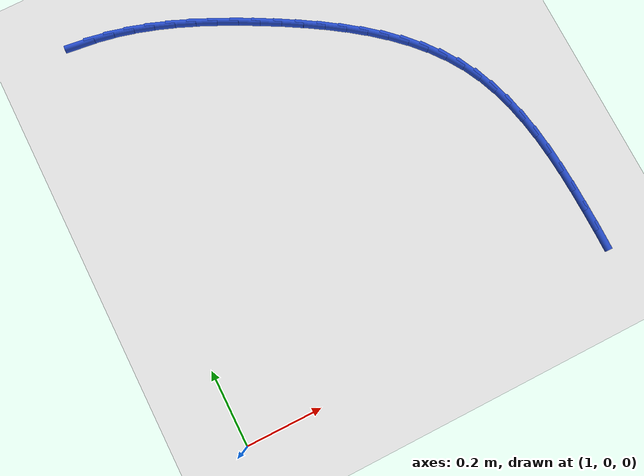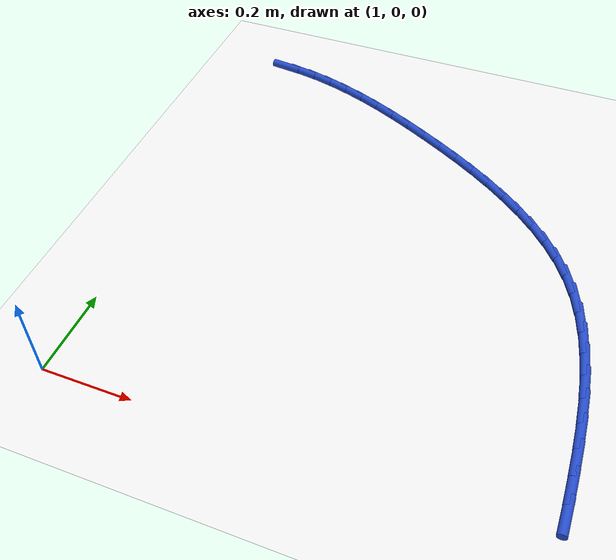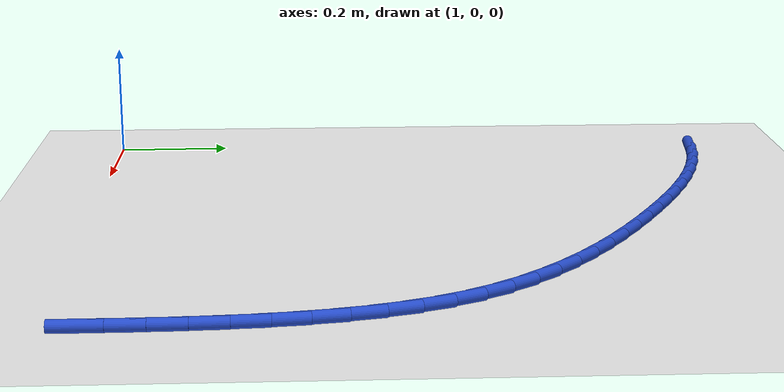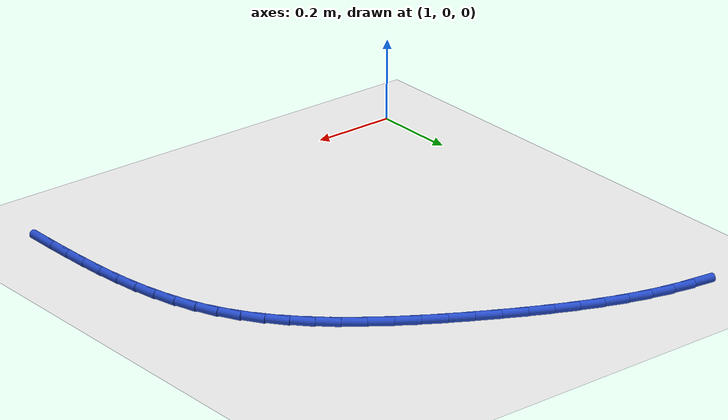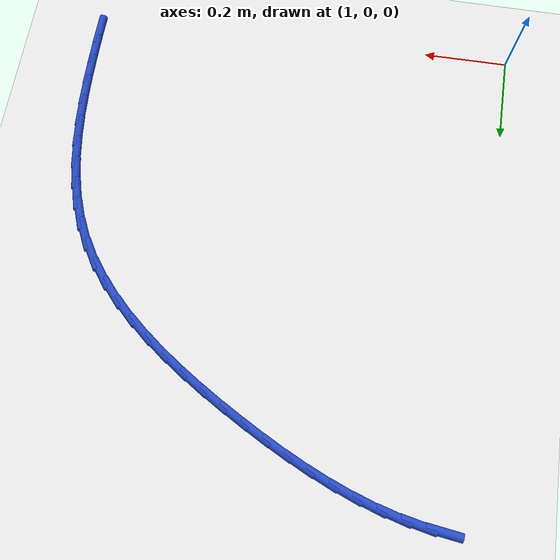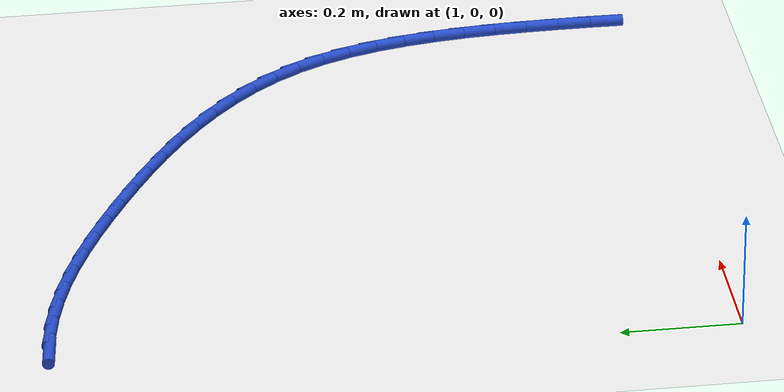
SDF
<sdf version="1.6">
 <world name="default">
  <model name="ground_plane">
   <static>1</static>
   <link name="link">
    <collision name="collision">
     <geometry><plane><normal>0 0 1</normal><size>100 100</size></plane></geometry>
     <surface><friction><ode><mu>100</mu><mu2>50</mu2></ode></friction></surface>
    </collision>
    <visual name="visual">
     <cast_shadows>0</cast_shadows>
     <geometry><plane><normal>0 0 1</normal><size>100 100</size></plane></geometry>
     <material>
      <script><uri>file://media/materials/scripts/gazebo.material</uri><name>Gazebo/WhiteGlow</name></script>
     </material>
    </visual>
   </link>
  </model>
  <model name="line">
   <link name="link_31">
    <pose>1.0565901198382752 1.110667134496977 0.01 0 1.57 -0.12516653492842136</pose>
    <collision name="collision">
     <geometry><cylinder><radius>0.01</radius><length>0.08</length></cylinder></geometry>
    </collision>
    <visual name="visual">
     <material>
      <script><name>Gazebo/Blue</name><uri>file://media/materials/scripts/gazebo.material</uri></script>
     </material>
     <geometry><cylinder><radius>0.01</radius><length>0.08</length></cylinder></geometry>
    </visual>
   </link>
   <link name="link_32">
    <pose>1.1091791576106702 1.1040501553949078 0.01 0 1.57 -0.19579245403008513</pose>
    <collision name="collision">
     <geometry><cylinder><radius>0.01</radius><length>0.08</length></cylinder></geometry>
    </collision>
    <visual name="visual">
     <material>
      <script><name>Gazebo/Blue</name><uri>file://media/materials/scripts/gazebo.material</uri></script>
     </material>
     <geometry><cylinder><radius>0.01</radius><length>0.08</length></cylinder></geometry>
    </visual>
   </link>
   <link name="link_33">
    <pose>1.1614069133828806 1.0936916520896551 0.01 0 1.57 -0.2591905908483473</pose>
    <collision name="collision">
     <geometry><cylinder><radius>0.01</radius><length>0.08</length></cylinder></geometry>
    </collision>
    <visual name="visual">
     <material>
      <script><name>Gazebo/Blue</name><uri>file://media/materials/scripts/gazebo.material</uri></script>
     </material>
     <geometry><cylinder><radius>0.01</radius><length>0.08</length></cylinder></geometry>
    </visual>
   </link>
   <link name="link_34">
    <pose>1.2132856075062846 1.0799357549193165 0.01 0 1.57 -0.31525038311029796</pose>
    <collision name="collision">
     <geometry><cylinder><radius>0.01</radius><length>0.08</length></cylinder></geometry>
    </collision>
    <visual name="visual">
     <material>
      <script><name>Gazebo/Blue</name><uri>file://media/materials/scripts/gazebo.material</uri></script>
     </material>
     <geometry><cylinder><radius>0.01</radius><length>0.08</length></cylinder></geometry>
    </visual>
   </link>
   <link name="link_35">
    <pose>1.2648274603322605 1.0631265942219883 0.01 0 1.57 -0.3640977480936359</pose>
    <collision name="collision">
     <geometry><cylinder><radius>0.01</radius><length>0.08</length></cylinder></geometry>
    </collision>
    <visual name="visual">
     <material>
      <script><name>Gazebo/Blue</name><uri>file://media/materials/scripts/gazebo.material</uri></script>
     </material>
     <geometry><cylinder><radius>0.01</radius><length>0.08</length></cylinder></geometry>
    </visual>
   </link>
   <link name="link_36">
    <pose>1.3160446922121847 1.0436083003357683 0.01 0 1.57 -0.4060022156702425</pose>
    <collision name="collision">
     <geometry><cylinder><radius>0.01</radius><length>0.08</length></cylinder></geometry>
    </collision>
    <visual name="visual">
     <material>
      <script><name>Gazebo/Blue</name><uri>file://media/materials/scripts/gazebo.material</uri></script>
     </material>
     <geometry><cylinder><radius>0.01</radius><length>0.08</length></cylinder></geometry>
    </visual>
   </link>
   <link name="link_37">
    <pose>1.3669495234974356 1.0217250035987524 0.01 0 1.57 -0.44130111796023824</pose>
    <collision name="collision">
     <geometry><cylinder><radius>0.01</radius><length>0.08</length></cylinder></geometry>
    </collision>
    <visual name="visual">
     <material>
      <script><name>Gazebo/Blue</name><uri>file://media/materials/scripts/gazebo.material</uri></script>
     </material>
     <geometry><cylinder><radius>0.01</radius><length>0.08</length></cylinder></geometry>
    </visual>
   </link>
   <link name="link_38">
    <pose>1.4175541745393914 0.9978208343490389 0.01 0 1.57 -0.4703435151702083</pose>
    <collision name="collision">
     <geometry><cylinder><radius>0.01</radius><length>0.08</length></cylinder></geometry>
    </collision>
    <visual name="visual">
     <material>
      <script><name>Gazebo/Blue</name><uri>file://media/materials/scripts/gazebo.material</uri></script>
     </material>
     <geometry><cylinder><radius>0.01</radius><length>0.08</length></cylinder></geometry>
    </visual>
   </link>
   <link name="link_39">
    <pose>1.4678708656894295 0.9722399229247239 0.01 0 1.57 -0.49345704095742604</pose>
    <collision name="collision">
     <geometry><cylinder><radius>0.01</radius><length>0.08</length></cylinder></geometry>
    </collision>
    <visual name="visual">
     <material>
      <script><name>Gazebo/Blue</name><uri>file://media/materials/scripts/gazebo.material</uri></script>
     </material>
     <geometry><cylinder><radius>0.01</radius><length>0.08</length></cylinder></geometry>
    </visual>
   </link>
   <link name="link_40">
    <pose>1.5179116032614433 0.9453261654089458 0.01 0 1.57 -0.5137010551090933</pose>
    <collision name="collision">
     <geometry><cylinder><radius>0.01</radius><length>0.08</length></cylinder></geometry>
    </collision>
    <visual name="visual">
     <material>
      <script><name>Gazebo/Blue</name><uri>file://media/materials/scripts/gazebo.material</uri></script>
     </material>
     <geometry><cylinder><radius>0.01</radius><length>0.08</length></cylinder></geometry>
    </visual>
   </link>
   <link name="link_41">
    <pose>1.567578219148349 0.9173028766484309 0.01 0 1.57 -0.5386702276557433</pose>
    <collision name="collision">
     <geometry><cylinder><radius>0.01</radius><length>0.08</length></cylinder></geometry>
    </collision>
    <visual name="visual">
     <material>
      <script><name>Gazebo/Blue</name><uri>file://media/materials/scripts/gazebo.material</uri></script>
     </material>
     <geometry><cylinder><radius>0.01</radius><length>0.08</length></cylinder></geometry>
    </visual>
   </link>
   <link name="link_42">
    <pose>1.6164828550806092 0.8880763178793238 0.01 0 1.57 -0.5699388972258599</pose>
    <collision name="collision">
     <geometry><cylinder><radius>0.01</radius><length>0.08</length></cylinder></geometry>
    </collision>
    <visual name="visual">
     <material>
      <script><name>Gazebo/Blue</name><uri>file://media/materials/scripts/gazebo.material</uri></script>
     </material>
     <geometry><cylinder><radius>0.01</radius><length>0.08</length></cylinder></geometry>
    </visual>
   </link>
   <link name="link_43">
    <pose>1.664190607609584 0.8575012613822274 0.01 0 1.57 -0.6080350344930896</pose>
    <collision name="collision">
     <geometry><cylinder><radius>0.01</radius><length>0.08</length></cylinder></geometry>
    </collision>
    <visual name="visual">
     <material>
      <script><name>Gazebo/Blue</name><uri>file://media/materials/scripts/gazebo.material</uri></script>
     </material>
     <geometry><cylinder><radius>0.01</radius><length>0.08</length></cylinder></geometry>
    </visual>
   </link>
   <link name="link_44">
    <pose>1.7102665732866322 0.8254324794377454 0.01 0 1.57 -0.6536144572001488</pose>
    <collision name="collision">
     <geometry><cylinder><radius>0.01</radius><length>0.08</length></cylinder></geometry>
    </collision>
    <visual name="visual">
     <material>
      <script><name>Gazebo/Blue</name><uri>file://media/materials/scripts/gazebo.material</uri></script>
     </material>
     <geometry><cylinder><radius>0.01</radius><length>0.08</length></cylinder></geometry>
    </visual>
   </link>
   <link name="link_45">
    <pose>1.7542758486631138 0.7917247443264808 0.01 0 1.57 -0.7074293084953667</pose>
    <collision name="collision">
     <geometry><cylinder><radius>0.01</radius><length>0.08</length></cylinder></geometry>
    </collision>
    <visual name="visual">
     <material>
      <script><name>Gazebo/Blue</name><uri>file://media/materials/scripts/gazebo.material</uri></script>
     </material>
     <geometry><cylinder><radius>0.01</radius><length>0.08</length></cylinder></geometry>
    </visual>
   </link>
   <link name="link_46">
    <pose>1.7957835302903886 0.7562328283290374 0.01 0 1.57 -0.770268092050964</pose>
    <collision name="collision">
     <geometry><cylinder><radius>0.01</radius><length>0.08</length></cylinder></geometry>
    </collision>
    <visual name="visual">
     <material>
      <script><name>Gazebo/Blue</name><uri>file://media/materials/scripts/gazebo.material</uri></script>
     </material>
     <geometry><cylinder><radius>0.01</radius><length>0.08</length></cylinder></geometry>
    </visual>
   </link>
   <link name="link_47">
    <pose>1.834354714719816 0.7188115037260181 0.01 0 1.57 -0.8428505552722888</pose>
    <collision name="collision">
     <geometry><cylinder><radius>0.01</radius><length>0.08</length></cylinder></geometry>
    </collision>
    <visual name="visual">
     <material>
      <script><name>Gazebo/Blue</name><uri>file://media/materials/scripts/gazebo.material</uri></script>
     </material>
     <geometry><cylinder><radius>0.01</radius><length>0.08</length></cylinder></geometry>
    </visual>
   </link>
   <link name="link_48">
    <pose>1.8695544985027555 0.6793155427980263 0.01 0 1.57 -0.9256616087967825</pose>
    <collision name="collision">
     <geometry><cylinder><radius>0.01</radius><length>0.08</length></cylinder></geometry>
    </collision>
    <visual name="visual">
     <material>
      <script><name>Gazebo/Blue</name><uri>file://media/materials/scripts/gazebo.material</uri></script>
     </material>
     <geometry><cylinder><radius>0.01</radius><length>0.08</length></cylinder></geometry>
    </visual>
   </link>
   <link name="link_49">
    <pose>1.9009479781905667 0.6375997178256659 0.01 0 1.57 -1.018720976639895</pose>
    <collision name="collision">
     <geometry><cylinder><radius>0.01</radius><length>0.08</length></cylinder></geometry>
    </collision>
    <visual name="visual">
     <material>
      <script><name>Gazebo/Blue</name><uri>file://media/materials/scripts/gazebo.material</uri></script>
     </material>
     <geometry><cylinder><radius>0.01</radius><length>0.08</length></cylinder></geometry>
    </visual>
   </link>
   <link name="link_50">
    <pose>1.9281002503346094 0.5935188010895396 0.01 0 1.57 -1.118257628920468</pose>
    <collision name="collision">
     <geometry><cylinder><radius>0.01</radius><length>0.08</length></cylinder></geometry>
    </collision>
    <visual name="visual">
     <material>
      <script><name>Gazebo/Blue</name><uri>file://media/materials/scripts/gazebo.material</uri></script>
     </material>
     <geometry><cylinder><radius>0.01</radius><length>0.08</length></cylinder></geometry>
    </visual>
   </link>
   <link name="link_51">
    <pose>1.9507200192264076 0.5469942553556372 0.01 0 1.57 -1.2104378501401174</pose>
    <collision name="collision">
     <geometry><cylinder><radius>0.01</radius><length>0.08</length></cylinder></geometry>
    </collision>
    <visual name="visual">
     <material>
      <script><name>Gazebo/Blue</name><uri>file://media/materials/scripts/gazebo.material</uri></script>
     </material>
     <geometry><cylinder><radius>0.01</radius><length>0.08</length></cylinder></geometry>
    </visual>
   </link>
   <link name="link_52">
    <pose>1.9690993376788892 0.4982184465877624 0.01 0 1.57 -1.2911409624377215</pose>
    <collision name="collision">
     <geometry><cylinder><radius>0.01</radius><length>0.08</length></cylinder></geometry>
    </collision>
    <visual name="visual">
     <material>
      <script><name>Gazebo/Blue</name><uri>file://media/materials/scripts/gazebo.material</uri></script>
     </material>
     <geometry><cylinder><radius>0.01</radius><length>0.08</length></cylinder></geometry>
    </visual>
   </link>
   <link name="link_53">
    <pose>1.983678359525956 0.44745251788501633 0.01 0 1.57 -1.3602499845228018</pose>
    <collision name="collision">
     <geometry><cylinder><radius>0.01</radius><length>0.08</length></cylinder></geometry>
    </collision>
    <visual name="visual">
     <material>
      <script><name>Gazebo/Blue</name><uri>file://media/materials/scripts/gazebo.material</uri></script>
     </material>
     <geometry><cylinder><radius>0.01</radius><length>0.08</length></cylinder></geometry>
    </visual>
   </link>
   <link name="link_54">
    <pose>1.994897238621254 0.3949576123556682 0.01 0 1.57 -1.4182025689161317</pose>
    <collision name="collision">
     <geometry><cylinder><radius>0.01</radius><length>0.08</length></cylinder></geometry>
    </collision>
    <visual name="visual">
     <material>
      <script><name>Gazebo/Blue</name><uri>file://media/materials/scripts/gazebo.material</uri></script>
     </material>
     <geometry><cylinder><radius>0.01</radius><length>0.08</length></cylinder></geometry>
    </visual>
   </link>
   <link name="link_55">
    <pose>2.0031961288184306 0.3409948731079889 0.01 0 1.57 -1.4657088048217488</pose>
    <collision name="collision">
     <geometry><cylinder><radius>0.01</radius><length>0.08</length></cylinder></geometry>
    </collision>
    <visual name="visual">
     <material>
      <script><name>Gazebo/Blue</name><uri>file://media/materials/scripts/gazebo.material</uri></script>
     </material>
     <geometry><cylinder><radius>0.01</radius><length>0.08</length></cylinder></geometry>
    </visual>
   </link>
   <link name="link_56">
    <pose>2.009015183971132 0.2858254432502477 0.01 0 1.57 -1.5035473478410881</pose>
    <collision name="collision">
     <geometry><cylinder><radius>0.01</radius><length>0.08</length></cylinder></geometry>
    </collision>
    <visual name="visual">
     <material>
      <script><name>Gazebo/Blue</name><uri>file://media/materials/scripts/gazebo.material</uri></script>
     </material>
     <geometry><cylinder><radius>0.01</radius><length>0.08</length></cylinder></geometry>
    </visual>
   </link>
   <link name="link_57">
    <pose>2.0127945579330055 0.22971046589071567 0.01 0 1.57 -1.5324371529554093</pose>
    <collision name="collision">
     <geometry><cylinder><radius>0.01</radius><length>0.08</length></cylinder></geometry>
    </collision>
    <visual name="visual">
     <material>
      <script><name>Gazebo/Blue</name><uri>file://media/materials/scripts/gazebo.material</uri></script>
     </material>
     <geometry><cylinder><radius>0.01</radius><length>0.08</length></cylinder></geometry>
    </visual>
   </link>
   <link name="link_58">
    <pose>2.0149744045576985 0.17291108413766187 0.01 0 1.57 -1.5529648368907236</pose>
    <collision name="collision">
     <geometry><cylinder><radius>0.01</radius><length>0.08</length></cylinder></geometry>
    </collision>
    <visual name="visual">
     <material>
      <script><name>Gazebo/Blue</name><uri>file://media/materials/scripts/gazebo.material</uri></script>
     </material>
     <geometry><cylinder><radius>0.01</radius><length>0.08</length></cylinder></geometry>
    </visual>
   </link>
   <link name="link_59">
    <pose>2.0159948776988568 0.11568844109935728 0.01 0 1.57 -1.566348460571294</pose>
    <collision name="collision">
     <geometry><cylinder><radius>0.01</radius><length>0.08</length></cylinder></geometry>
    </collision>
    <visual name="visual">
     <material>
      <script><name>Gazebo/Blue</name><uri>file://media/materials/scripts/gazebo.material</uri></script>
     </material>
     <geometry><cylinder><radius>0.01</radius><length>0.08</length></cylinder></geometry>
    </visual>
   </link>
   <link name="link_60">
    <pose>2.0162501396220587 0.05829907122145556 0.01 0 1.57 1.5613045797999792</pose>
    <collision name="collision">
     <geometry><cylinder><radius>0.01</radius><length>0.08</length></cylinder></geometry>
    </collision>
    <visual name="visual">
     <material>
      <script><name>Gazebo/Blue</name><uri>file://media/materials/scripts/gazebo.material</uri></script>
     </material>
     <geometry><cylinder><radius>0.01</radius><length>0.08</length></cylinder></geometry>
    </visual>
   </link>
  </model>
 </world>
</sdf>
